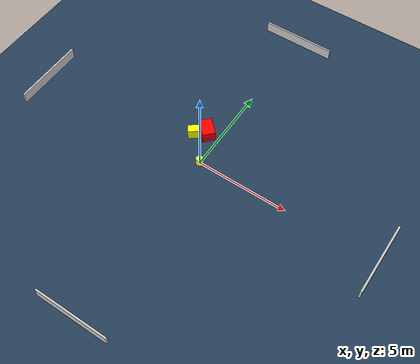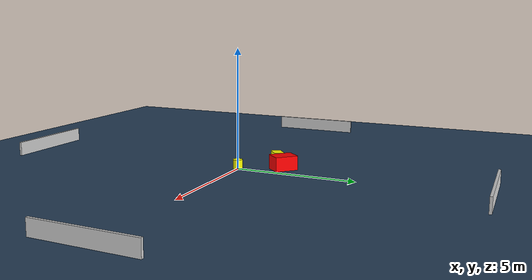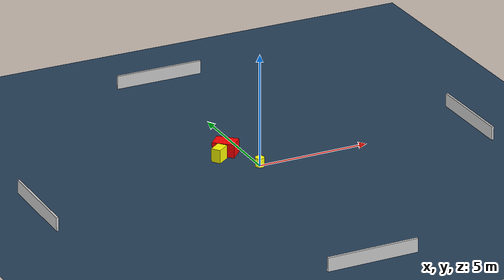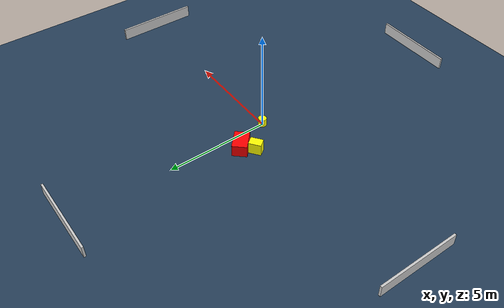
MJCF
<?xml version="1.0" ?>
<mujoco model="generated_environment">
  <option timestep="0.01" integrator="RK4" cone="elliptic"/>
  <default>
    <geom density="1"/>
  </default>
  <asset>
    <texture builtin="gradient" height="3072" name="skybox" rgb1="0.3 0.5 0.7" rgb2="0 0 0" type="skybox" width="512"/>
    <texture builtin="checker" height="300" name="groundplane" rgb1="0.2 0.3 0.4" rgb2="0.1 0.2 0.3" type="2d" width="300"/>
    <material name="groundplane" reflectance="0.2" texrepeat="5 5" texture="groundplane"/>
  </asset>
  <worldbody>
    <light dir="0 0 -1" directional="true" pos="0 0 1.5"/>
    <geom condim="3" friction="0.5 0.005 0.001" material="groundplane" name="floor" pos="0 0 0" size="0 0 0.05" type="plane"/>
    <body name="walls">
      <geom name="wall_1" condim="4" pos="-10.0 0.0 0.3" rgba="0.800000011920929 0.800000011920929 0.800000011920929 1.0" size="0.05 2.0 0.3" type="box"/>
      <geom name="wall_2" condim="4" pos="10.0 0.0 0.3" rgba="0.800000011920929 0.800000011920929 0.800000011920929 1.0" size="0.05 2.0 0.3" type="box"/>
      <geom name="wall_3" condim="4" pos="0.0 -10.0 0.3" rgba="0.800000011920929 0.800000011920929 0.800000011920929 1.0" size="2.0 0.05 0.3" type="box"/>
      <geom name="wall_4" condim="4" pos="0.0 10.0 0.3" rgba="0.800000011920929 0.800000011920929 0.800000011920929 1.0" size="2.0 0.05 0.3" type="box"/>
    </body>
    <body name="robot">
      <joint name="joint_x" type="slide" pos="0 0 0" axis="1 0 0"/>
      <joint name="joint_y" type="slide" pos="0 0 0" axis="0 1 0"/>
      <geom name="robot" type="cylinder" pos="0.0 0.0 0.2" size="0.2 0.2 0.0" mass="5.0" friction="1.0 0.005 0.0001" condim="4" rgba="1.0 1.0 0.0 1.0"/>
    </body>
    <body name="obstacle_1_movable">
      <geom name="obstacle_1_movable" condim="4" pos="-1.252574175225142 1.2786344200245316 0.3" euler="0 0 126.44936467816372" friction="0.0 0.005 0.001" rgba="1.0 1.0 0.0 1.0" size="0.21205654650312195 0.30274917915015825 0.3" type="box" mass="0.1"/>
      <joint type="free"/>
    </body>
    <body name="obstacle_2_static">
      <geom name="obstacle_2_static" condim="4" pos="-0.7332212193873227 1.7462009735527675 0.3" euler="0 0 317.23541621690646" friction="0.0 0.005 0.001" rgba="1.0 0.0 0.0 1.0" size="0.49015395419039626 0.35259245406775935 0.3" type="box"/>
    </body>
  </worldbody>
  <actuator>
    <motor name="actuator_x" joint="joint_x" gear="1" ctrlrange="-1 1"/>
    <motor name="actuator_y" joint="joint_y" gear="1" ctrlrange="-1 1"/>
  </actuator>
</mujoco>
